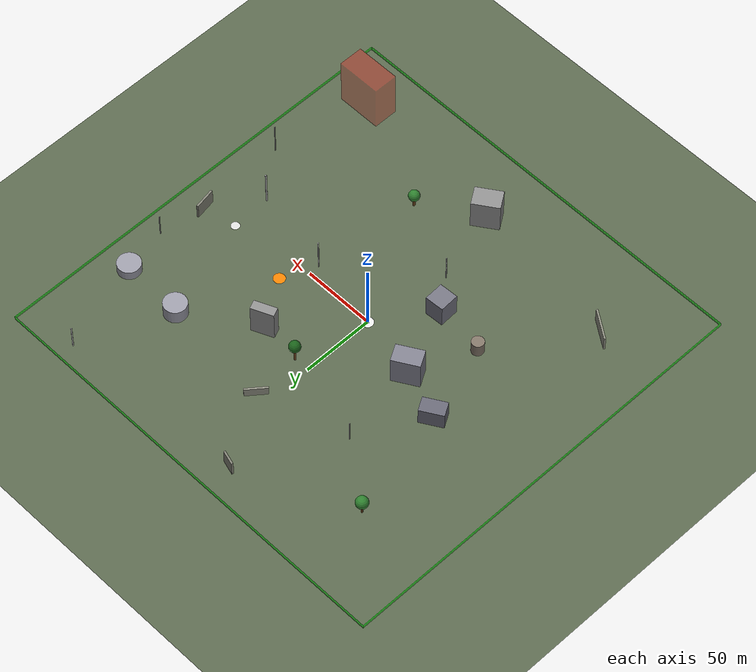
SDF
<?xml version="1.0" ?>
<sdf version="1.9">
  <!--
  Generated World: training_variant_008
  Seed: 50
  Difficulty: medium
  Obstacles: 22
  NFZs: 1
  Generated: 2025-12-27T10:39:35.564228
  Generator: Flyby F-11 World Generator v1.0.0
-->
  <world name="training_variant_008">
    <physics name="training_physics" type="ode">
      <max_step_size>0.001</max_step_size>
      <real_time_factor>1.0</real_time_factor>
      <real_time_update_rate>1000</real_time_update_rate>
      <ode>
        <solver>
          <type>quick</type>
          <iters>50</iters>
          <sor>1.3</sor>
        </solver>
        <constraints>
          <cfm>0.0</cfm>
          <erp>0.2</erp>
        </constraints>
      </ode>
    </physics>
    <plugin filename="gz-sim-physics-system" name="gz::sim::systems::Physics"/>
    <plugin filename="gz-sim-sensors-system" name="gz::sim::systems::Sensors">
      <render_engine>ogre2</render_engine>
    </plugin>
    <plugin filename="gz-sim-scene-broadcaster-system" name="gz::sim::systems::SceneBroadcaster"/>
    <plugin filename="gz-sim-user-commands-system" name="gz::sim::systems::UserCommands"/>
    <plugin filename="gz-sim-imu-system" name="gz::sim::systems::Imu"/>
    <plugin filename="gz-sim-air-pressure-system" name="gz::sim::systems::AirPressure"/>
    <plugin filename="gz-sim-magnetometer-system" name="gz::sim::systems::Magnetometer"/>
    <plugin filename="gz-sim-navsat-system" name="gz::sim::systems::NavSat"/>
    <plugin filename="gz-sim-contact-system" name="gz::sim::systems::Contact"/>
    <plugin filename="gz-sim-wind-effects-system" name="gz::sim::systems::WindEffects">
      <force_approximation_scaling_factor>1.0</force_approximation_scaling_factor>
    </plugin>
    <atmosphere type="adiabatic">
      <temperature>288.15</temperature>
      <pressure>101325</pressure>
      <mass_density>1.225</mass_density>
    </atmosphere>
    <wind>
      <linear_velocity>0.6083935770676241 -1.2316871148886426 0</linear_velocity>
    </wind>
    <spherical_coordinates>
      <surface_model>EARTH_WGS84</surface_model>
      <world_frame_orientation>ENU</world_frame_orientation>
      <latitude_deg>33.3853</latitude_deg>
      <longitude_deg>-117.5653</longitude_deg>
      <elevation>100</elevation>
      <heading_deg>0</heading_deg>
    </spherical_coordinates>
    <scene>
      <ambient>0.5 0.5 0.52 1</ambient>
      <background>0.6 0.6 0.65 1</background>
      <shadows>true</shadows>
      <grid>false</grid>
    </scene>
    <light type="directional" name="sun">
      <cast_shadows>true</cast_shadows>
      <pose>0 0 100 0 0 0</pose>
      <diffuse>0.5 0.5 0.55 1</diffuse>
      <specular>0.05 0.05 0.05 1</specular>
      <attenuation>
        <range>1000</range>
        <constant>0.9</constant>
        <linear>0.01</linear>
        <quadratic>0.001</quadratic>
      </attenuation>
      <direction>-0.3 0.0 -0.95</direction>
    </light>
    <model name="ground_plane">
      <static>true</static>
      <link name="link">
        <collision name="collision">
          <geometry>
            <plane>
              <normal>0 0 1</normal>
              <size>500 500</size>
            </plane>
          </geometry>
          <surface>
            <friction>
              <ode>
                <mu>100</mu>
                <mu2>50</mu2>
              </ode>
            </friction>
          </surface>
        </collision>
        <visual name="visual">
          <geometry>
            <plane>
              <normal>0 0 1</normal>
              <size>500 500</size>
            </plane>
          </geometry>
          <material>
            <ambient>0.35 0.4 0.3 1</ambient>
            <diffuse>0.35 0.4 0.3 1</diffuse>
          </material>
        </visual>
      </link>
    </model>
    <model name="geofence_north">
      <static>true</static>
      <pose>0 150.0 1 0 0 0</pose>
      <link name="link">
        <visual name="visual">
          <geometry>
            <box>
              <size>300.0 0.5 2</size>
            </box>
          </geometry>
          <material>
            <ambient>0 0.8 0 0.6</ambient>
            <diffuse>0 0.8 0 0.6</diffuse>
            <emissive>0 0.2 0 1</emissive>
          </material>
        </visual>
      </link>
    </model>
    <model name="geofence_south">
      <static>true</static>
      <pose>0 -150.0 1 0 0 0</pose>
      <link name="link">
        <visual name="visual">
          <geometry>
            <box>
              <size>300.0 0.5 2</size>
            </box>
          </geometry>
          <material>
            <ambient>0 0.8 0 0.6</ambient>
            <diffuse>0 0.8 0 0.6</diffuse>
            <emissive>0 0.2 0 1</emissive>
          </material>
        </visual>
      </link>
    </model>
    <model name="geofence_east">
      <static>true</static>
      <pose>150.0 0 1 0 0 0</pose>
      <link name="link">
        <visual name="visual">
          <geometry>
            <box>
              <size>0.5 300.0 2</size>
            </box>
          </geometry>
          <material>
            <ambient>0 0.8 0 0.6</ambient>
            <diffuse>0 0.8 0 0.6</diffuse>
            <emissive>0 0.2 0 1</emissive>
          </material>
        </visual>
      </link>
    </model>
    <model name="geofence_west">
      <static>true</static>
      <pose>-150.0 0 1 0 0 0</pose>
      <link name="link">
        <visual name="visual">
          <geometry>
            <box>
              <size>0.5 300.0 2</size>
            </box>
          </geometry>
          <material>
            <ambient>0 0.8 0 0.6</ambient>
            <diffuse>0 0.8 0 0.6</diffuse>
            <emissive>0 0.2 0 1</emissive>
          </material>
        </visual>
      </link>
    </model>
    <model name="nfz_0_volume">
      <static>true</static>
      <pose>119.09356333825525 -116.7911014815621 17.359309904262368 0 0 0</pose>
      <link name="link">
        <visual name="visual">
          <geometry>
            <box>
              <size>31.21347679546374 17.007542670311764 34.718619808524736</size>
            </box>
          </geometry>
          <material>
            <ambient>1 0 0 0.30000000000000004</ambient>
            <diffuse>1 0 0 0.30000000000000004</diffuse>
          </material>
        </visual>
      </link>
    </model>
    <model name="obstacle_building_0">
      <static>true</static>
      <pose>-44.4099984255694 10.05842874548523 10.518671428768762 0 0 0.5312778387119492</pose>
      <link name="link">
        <visual name="visual">
          <geometry>
            <box>
              <size>18.689760766251062 12.232888171512762 21.037342857537524</size>
            </box>
          </geometry>
          <material>
            <ambient>0.5 0.5 0.55 1.0</ambient>
            <diffuse>0.5 0.5 0.55 1.0</diffuse>
          </material>
        </visual>
        <collision name="collision">
          <geometry>
            <box>
              <size>18.689760766251062 12.232888171512762 21.037342857537524</size>
            </box>
          </geometry>
        </collision>
      </link>
    </model>
    <model name="obstacle_pole_1">
      <static>true</static>
      <pose>133.658471402165 -50.335147868335795 11.626369249020158 0 0 0.0</pose>
      <link name="link">
        <visual name="visual">
          <geometry>
            <cylinder>
              <radius>0.34599525857086133</radius>
              <length>23.252738498040316</length>
            </cylinder>
          </geometry>
          <material>
            <ambient>0.65 0.65 0.65 1.0</ambient>
            <diffuse>0.65 0.65 0.65 1.0</diffuse>
          </material>
        </visual>
        <collision name="collision">
          <geometry>
            <cylinder>
              <radius>0.34599525857086133</radius>
              <length>23.252738498040316</length>
            </cylinder>
          </geometry>
        </collision>
      </link>
    </model>
    <model name="obstacle_pole_2">
      <static>true</static>
      <pose>109.21126070651314 -19.758061162488076 12.440638862691243 0 0 0.0</pose>
      <link name="link">
        <visual name="visual">
          <geometry>
            <cylinder>
              <radius>0.5592788420518917</radius>
              <length>24.881277725382485</length>
            </cylinder>
          </geometry>
          <material>
            <ambient>0.65 0.65 0.65 1.0</ambient>
            <diffuse>0.65 0.65 0.65 1.0</diffuse>
          </material>
        </visual>
        <collision name="collision">
          <geometry>
            <cylinder>
              <radius>0.5592788420518917</radius>
              <length>24.881277725382485</length>
            </cylinder>
          </geometry>
        </collision>
      </link>
    </model>
    <model name="obstacle_tank_3">
      <static>true</static>
      <pose>85.87217325465019 77.6590022097285 5.079443281976555 0 0 0.0</pose>
      <link name="link">
        <visual name="visual">
          <geometry>
            <cylinder>
              <radius>7.849812867164761</radius>
              <length>10.15888656395311</length>
            </cylinder>
          </geometry>
          <material>
            <ambient>0.6 0.6 0.65 1.0</ambient>
            <diffuse>0.6 0.6 0.65 1.0</diffuse>
          </material>
        </visual>
        <collision name="collision">
          <geometry>
            <cylinder>
              <radius>7.849812867164761</radius>
              <length>10.15888656395311</length>
            </cylinder>
          </geometry>
        </collision>
      </link>
    </model>
    <model name="obstacle_wall_4">
      <static>true</static>
      <pose>-17.70229816913597 130.68828296050324 5.396293198988226 0 0 2.8614011813780005</pose>
      <link name="link">
        <visual name="visual">
          <geometry>
            <box>
              <size>10.085887710812067 1.3374492247863126 10.792586397976452</size>
            </box>
          </geometry>
          <material>
            <ambient>0.5 0.5 0.45 1.0</ambient>
            <diffuse>0.5 0.5 0.45 1.0</diffuse>
          </material>
        </visual>
        <collision name="collision">
          <geometry>
            <box>
              <size>10.085887710812067 1.3374492247863126 10.792586397976452</size>
            </box>
          </geometry>
        </collision>
      </link>
    </model>
    <model name="obstacle_building_5">
      <static>true</static>
      <pose>-76.66694979013859 20.851457146065627 6.2921408474158795 0 0 0.5359110294022053</pose>
      <link name="link">
        <visual name="visual">
          <geometry>
            <box>
              <size>16.30954160522076 10.139929943826704 12.584281694831759</size>
            </box>
          </geometry>
          <material>
            <ambient>0.4 0.4 0.45 1.0</ambient>
            <diffuse>0.4 0.4 0.45 1.0</diffuse>
          </material>
        </visual>
        <collision name="collision">
          <geometry>
            <box>
              <size>16.30954160522076 10.139929943826704 12.584281694831759</size>
            </box>
          </geometry>
        </collision>
      </link>
    </model>
    <model name="obstacle_tank_6">
      <static>true</static>
      <pose>129.24168523445456 75.98797479920302 3.352610368725322 0 0 0.0</pose>
      <link name="link">
        <visual name="visual">
          <geometry>
            <cylinder>
              <radius>7.858339304311288</radius>
              <length>6.705220737450644</length>
            </cylinder>
          </geometry>
          <material>
            <ambient>0.6 0.6 0.65 1.0</ambient>
            <diffuse>0.6 0.6 0.65 1.0</diffuse>
          </material>
        </visual>
        <collision name="collision">
          <geometry>
            <cylinder>
              <radius>7.858339304311288</radius>
              <length>6.705220737450644</length>
            </cylinder>
          </geometry>
        </collision>
      </link>
    </model>
    <model name="obstacle_building_7">
      <static>true</static>
      <pose>4.336106221792448 -106.32615762566115 10.949226306596618 0 0 0.5954691623615246</pose>
      <link name="link">
        <visual name="visual">
          <geometry>
            <box>
              <size>18.65060250617782 13.334786443310978 21.898452613193236</size>
            </box>
          </geometry>
          <material>
            <ambient>0.55 0.55 0.55 1.0</ambient>
            <diffuse>0.55 0.55 0.55 1.0</diffuse>
          </material>
        </visual>
        <collision name="collision">
          <geometry>
            <box>
              <size>18.65060250617782 13.334786443310978 21.898452613193236</size>
            </box>
          </geometry>
        </collision>
      </link>
    </model>
    <model name="obstacle_pole_8">
      <static>true</static>
      <pose>50.36478144625775 -7.593882570326372 12.02346081238282 0 0 0.0</pose>
      <link name="link">
        <visual name="visual">
          <geometry>
            <cylinder>
              <radius>0.40751912223328135</radius>
              <length>24.04692162476564</length>
            </cylinder>
          </geometry>
          <material>
            <ambient>0.75 0.75 0.75 1.0</ambient>
            <diffuse>0.75 0.75 0.75 1.0</diffuse>
          </material>
        </visual>
        <collision name="collision">
          <geometry>
            <cylinder>
              <radius>0.40751912223328135</radius>
              <length>24.04692162476564</length>
            </cylinder>
          </geometry>
        </collision>
      </link>
    </model>
    <model name="obstacle_wall_9">
      <static>true</static>
      <pose>-103.71971862381703 -93.67557198420167 5.177476098528496 0 0 2.5453522612961614</pose>
      <link name="link">
        <visual name="visual">
          <geometry>
            <box>
              <size>22.042247538146363 1.2241841268708802 10.354952197056992</size>
            </box>
          </geometry>
          <material>
            <ambient>0.55 0.55 0.5 1.0</ambient>
            <diffuse>0.55 0.55 0.5 1.0</diffuse>
          </material>
        </visual>
        <collision name="collision">
          <geometry>
            <box>
              <size>22.042247538146363 1.2241841268708802 10.354952197056992</size>
            </box>
          </geometry>
        </collision>
      </link>
    </model>
    <model name="obstacle_building_10">
      <static>true</static>
      <pose>39.12903332216189 48.196306159429156 11.261212644497324 0 0 0.4149528125833552</pose>
      <link name="link">
        <visual name="visual">
          <geometry>
            <box>
              <size>15.593495594072788 6.424361271352709 22.522425288994647</size>
            </box>
          </geometry>
          <material>
            <ambient>0.55 0.55 0.55 1.0</ambient>
            <diffuse>0.55 0.55 0.55 1.0</diffuse>
          </material>
        </visual>
        <collision name="collision">
          <geometry>
            <box>
              <size>15.593495594072788 6.424361271352709 22.522425288994647</size>
            </box>
          </geometry>
        </collision>
      </link>
    </model>
    <model name="obstacle_building_11">
      <static>true</static>
      <pose>-25.836299771420855 -36.65255457356521 7.996555125391973 0 0 0.053043036370772276</pose>
      <link name="link">
        <visual name="visual">
          <geometry>
            <box>
              <size>13.019192853701608 13.388760257638978 15.993110250783946</size>
            </box>
          </geometry>
          <material>
            <ambient>0.45 0.45 0.5 1.0</ambient>
            <diffuse>0.45 0.45 0.5 1.0</diffuse>
          </material>
        </visual>
        <collision name="collision">
          <geometry>
            <box>
              <size>13.019192853701608 13.388760257638978 15.993110250783946</size>
            </box>
          </geometry>
        </collision>
      </link>
    </model>
    <model name="obstacle_tree_12">
      <static>true</static>
      <pose>10.753047905585078 50.04599480371982 0 0 0 0.0</pose>
      <link name="link">
        <visual name="trunk">
          <pose>0 0 5.565919168594315 0 0 0</pose>
          <geometry>
            <cylinder>
              <radius>0.6699904568690859</radius>
              <length>11.13183833718863</length>
            </cylinder>
          </geometry>
          <material>
            <ambient>0.42 0.27 0.12 1.0</ambient>
            <diffuse>0.42 0.27 0.12 1.0</diffuse>
          </material>
        </visual>
        <visual name="canopy">
          <pose>0 0 13.485240985833368 0 0 0</pose>
          <geometry>
            <sphere>
              <radius>3.92233774774123</radius>
            </sphere>
          </geometry>
          <material>
            <ambient>0.1 0.38 0.1 1.0</ambient>
            <diffuse>0.1 0.38 0.1 1.0</diffuse>
          </material>
        </visual>
        <collision name="collision">
          <pose>0 0 9.488256916335544 0 0 0</pose>
          <geometry>
            <cylinder>
              <radius>3.92233774774123</radius>
              <length>18.97651383267109</length>
            </cylinder>
          </geometry>
        </collision>
      </link>
    </model>
    <model name="obstacle_pole_13">
      <static>true</static>
      <pose>136.05828232292455 44.33169902104544 8.481618014219652 0 0 0.0</pose>
      <link name="link">
        <visual name="visual">
          <geometry>
            <cylinder>
              <radius>0.3479894565710798</radius>
              <length>16.963236028439304</length>
            </cylinder>
          </geometry>
          <material>
            <ambient>0.65 0.65 0.65 1.0</ambient>
            <diffuse>0.65 0.65 0.65 1.0</diffuse>
          </material>
        </visual>
        <collision name="collision">
          <geometry>
            <cylinder>
              <radius>0.3479894565710798</radius>
              <length>16.963236028439304</length>
            </cylinder>
          </geometry>
        </collision>
      </link>
    </model>
    <model name="obstacle_pole_14">
      <static>true</static>
      <pose>-52.68711412814544 66.26236601644715 8.215224334202034 0 0 0.0</pose>
      <link name="link">
        <visual name="visual">
          <geometry>
            <cylinder>
              <radius>0.315048826445939</radius>
              <length>16.43044866840407</length>
            </cylinder>
          </geometry>
          <material>
            <ambient>0.7 0.7 0.7 1.0</ambient>
            <diffuse>0.7 0.7 0.7 1.0</diffuse>
          </material>
        </visual>
        <collision name="collision">
          <geometry>
            <cylinder>
              <radius>0.315048826445939</radius>
              <length>16.43044866840407</length>
            </cylinder>
          </geometry>
        </collision>
      </link>
    </model>
    <model name="obstacle_pole_15">
      <static>true</static>
      <pose>111.0832392864641 137.93838568424334 8.704972624000671 0 0 0.0</pose>
      <link name="link">
        <visual name="visual">
          <geometry>
            <cylinder>
              <radius>0.45004777249578004</radius>
              <length>17.409945248001343</length>
            </cylinder>
          </geometry>
          <material>
            <ambient>0.75 0.75 0.75 1.0</ambient>
            <diffuse>0.75 0.75 0.75 1.0</diffuse>
          </material>
        </visual>
        <collision name="collision">
          <geometry>
            <cylinder>
              <radius>0.45004777249578004</radius>
              <length>17.409945248001343</length>
            </cylinder>
          </geometry>
        </collision>
      </link>
    </model>
    <model name="obstacle_tree_16">
      <static>true</static>
      <pose>-94.19255758384813 96.44904687518985 0 0 0 0.0</pose>
      <link name="link">
        <visual name="trunk">
          <pose>0 0 4.043687079991956 0 0 0</pose>
          <geometry>
            <cylinder>
              <radius>0.544623619677259</radius>
              <length>8.087374159983913</length>
            </cylinder>
          </geometry>
          <material>
            <ambient>0.4 0.25 0.1 1.0</ambient>
            <diffuse>0.4 0.25 0.1 1.0</diffuse>
          </material>
        </visual>
        <visual name="canopy">
          <pose>0 0 10.614850928014079 0 0 0</pose>
          <geometry>
            <sphere>
              <radius>4.212461280050277</radius>
            </sphere>
          </geometry>
          <material>
            <ambient>0.18 0.5 0.18 1.0</ambient>
            <diffuse>0.18 0.5 0.18 1.0</diffuse>
          </material>
        </visual>
        <collision name="collision">
          <pose>0 0 8.256148360042234 0 0 0</pose>
          <geometry>
            <cylinder>
              <radius>4.212461280050277</radius>
              <length>16.512296720084468</length>
            </cylinder>
          </geometry>
        </collision>
      </link>
    </model>
    <model name="obstacle_wall_17">
      <static>true</static>
      <pose>8.795935762431554 83.71909090865725 3.133345778555364 0 0 0.8939979952917014</pose>
      <link name="link">
        <visual name="visual">
          <geometry>
            <box>
              <size>15.030676115961676 1.3780482882711267 6.266691557110728</size>
            </box>
          </geometry>
          <material>
            <ambient>0.55 0.55 0.5 1.0</ambient>
            <diffuse>0.55 0.55 0.5 1.0</diffuse>
          </material>
        </visual>
        <collision name="collision">
          <geometry>
            <box>
              <size>15.030676115961676 1.3780482882711267 6.266691557110728</size>
            </box>
          </geometry>
        </collision>
      </link>
    </model>
    <model name="obstacle_wall_18">
      <static>true</static>
      <pose>130.75391802190194 12.086038763450318 5.431805050121482 0 0 1.7582991003733865</pose>
      <link name="link">
        <visual name="visual">
          <geometry>
            <box>
              <size>14.723086861900239 1.3794077911343123 10.863610100242964</size>
            </box>
          </geometry>
          <material>
            <ambient>0.5 0.5 0.45 1.0</ambient>
            <diffuse>0.5 0.5 0.45 1.0</diffuse>
          </material>
        </visual>
        <collision name="collision">
          <geometry>
            <box>
              <size>14.723086861900239 1.3794077911343123 10.863610100242964</size>
            </box>
          </geometry>
        </collision>
      </link>
    </model>
    <model name="obstacle_pole_19">
      <static>true</static>
      <pose>-9.579740535256207 -57.17283849124041 9.923658068070838 0 0 0.0</pose>
      <link name="link">
        <visual name="visual">
          <geometry>
            <cylinder>
              <radius>0.3901035896541852</radius>
              <length>19.847316136141675</length>
            </cylinder>
          </geometry>
          <material>
            <ambient>0.75 0.75 0.75 1.0</ambient>
            <diffuse>0.75 0.75 0.75 1.0</diffuse>
          </material>
        </visual>
        <collision name="collision">
          <geometry>
            <cylinder>
              <radius>0.3901035896541852</radius>
              <length>19.847316136141675</length>
            </cylinder>
          </geometry>
        </collision>
      </link>
    </model>
    <model name="obstacle_tree_20">
      <static>true</static>
      <pose>43.10909668866816 -82.01283234105972 0 0 0 0.0</pose>
      <link name="link">
        <visual name="trunk">
          <pose>0 0 3.6738088259135986 0 0 0</pose>
          <geometry>
            <cylinder>
              <radius>0.7962770062290829</radius>
              <length>7.347617651827197</length>
            </cylinder>
          </geometry>
          <material>
            <ambient>0.4 0.25 0.1 1.0</ambient>
            <diffuse>0.4 0.25 0.1 1.0</diffuse>
          </material>
        </visual>
        <visual name="canopy">
          <pose>0 0 9.622739876336759 0 0 0</pose>
          <geometry>
            <sphere>
              <radius>3.791870374182603</radius>
            </sphere>
          </geometry>
          <material>
            <ambient>0.18 0.5 0.18 1.0</ambient>
            <diffuse>0.18 0.5 0.18 1.0</diffuse>
          </material>
        </visual>
        <collision name="collision">
          <pose>0 0 7.465679200096202 0 0 0</pose>
          <geometry>
            <cylinder>
              <radius>3.791870374182603</radius>
              <length>14.931358400192403</length>
            </cylinder>
          </geometry>
        </collision>
      </link>
    </model>
    <model name="obstacle_tank_21">
      <static>true</static>
      <pose>-60.706650609527586 -32.617262668993845 4.68493747334518 0 0 0.0</pose>
      <link name="link">
        <visual name="visual">
          <geometry>
            <cylinder>
              <radius>4.197090891738123</radius>
              <length>9.36987494669036</length>
            </cylinder>
          </geometry>
          <material>
            <ambient>0.5 0.45 0.4 1.0</ambient>
            <diffuse>0.5 0.45 0.4 1.0</diffuse>
          </material>
        </visual>
        <collision name="collision">
          <geometry>
            <cylinder>
              <radius>4.197090891738123</radius>
              <length>9.36987494669036</length>
            </cylinder>
          </geometry>
        </collision>
      </link>
    </model>
    <model name="lz_primary">
      <static>true</static>
      <pose>0 0 0.02 0 0 0</pose>
      <link name="link">
        <visual name="pad">
          <geometry>
            <cylinder>
              <radius>4.0</radius>
              <length>0.04</length>
            </cylinder>
          </geometry>
          <material>
            <ambient>0.9 0.9 0.9 1</ambient>
            <diffuse>0.9 0.9 0.9 1</diffuse>
          </material>
        </visual>
        <visual name="H_v">
          <pose>0 0 0.02 0 0 0</pose>
          <geometry>
            <box>
              <size>0.6 2.5 0.01</size>
            </box>
          </geometry>
          <material>
            <ambient>0 0 0.8 1</ambient>
            <diffuse>0 0 0.8 1</diffuse>
          </material>
        </visual>
        <visual name="H_h">
          <pose>0 0 0.02 0 0 0</pose>
          <geometry>
            <box>
              <size>2.5 0.6 0.01</size>
            </box>
          </geometry>
          <material>
            <ambient>0 0 0.8 1</ambient>
            <diffuse>0 0 0.8 1</diffuse>
          </material>
        </visual>
      </link>
    </model>
    <model name="lz_secondary">
      <static>true</static>
      <pose>108.35973171990744 7.474592014673959 0.02 0 0 0</pose>
      <link name="link">
        <visual name="pad">
          <geometry>
            <cylinder>
              <radius>3.0</radius>
              <length>0.04</length>
            </cylinder>
          </geometry>
          <material>
            <ambient>0.85 0.85 0.85 1</ambient>
            <diffuse>0.85 0.85 0.85 1</diffuse>
          </material>
        </visual>
      </link>
    </model>
    <model name="lz_emergency">
      <static>true</static>
      <pose>60.61398528662181 15.680809918835223 0.02 0 0 0</pose>
      <link name="link">
        <visual name="pad">
          <geometry>
            <cylinder>
              <radius>4.0</radius>
              <length>0.04</length>
            </cylinder>
          </geometry>
          <material>
            <ambient>1 0.5 0 1</ambient>
            <diffuse>1 0.5 0 1</diffuse>
          </material>
        </visual>
      </link>
    </model>
    <include>
      <uri>model://iris_with_ardupilot</uri>
      <name>iris</name>
      <pose>0 0 0.5 0 0 0</pose>
    </include>
  </world>
</sdf>

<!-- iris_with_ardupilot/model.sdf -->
<sdf version="1.9">
  <model name="iris_with_ardupilot">
    <pose>0 0 0.2 0 0 0</pose>

    <link name="base_link">
      <inertial>
        <mass>1.5</mass>
        <inertia>
          <ixx>0.029125</ixx>
          <ixy>0</ixy>
          <ixz>0</ixz>
          <iyy>0.029125</iyy>
          <iyz>0</iyz>
          <izz>0.055225</izz>
        </inertia>
      </inertial>

      <visual name="body_visual">
        <geometry>
          <box>
            <size>0.47 0.47 0.11</size>
          </box>
        </geometry>
        <material>
          <ambient>0.2 0.2 0.2 1</ambient>
          <diffuse>0.2 0.2 0.2 1</diffuse>
        </material>
      </visual>

      <!-- Center marker for orientation (green = forward) -->
      <visual name="center_marker">
        <pose>0.15 0 0 0 0 0</pose>
        <geometry>
          <sphere>
            <radius>0.05</radius>
          </sphere>
        </geometry>
        <material>
          <ambient>0 1 0 1</ambient>
          <diffuse>0 1 0 1</diffuse>
        </material>
      </visual>

      <collision name="collision">
        <geometry>
          <box>
            <size>0.47 0.47 0.11</size>
          </box>
        </geometry>
      </collision>

      <!-- GPS/NavSat Sensor                -->
      <!-- Consumer-grade GPS accuracy      -->
      <sensor name="navsat_sensor" type="navsat">
        <always_on>1</always_on>
        <update_rate>10</update_rate>
        <topic>gps</topic>
        <navsat>
          <position_sensing>
            <horizontal>
              <noise type="gaussian">
                <mean>0.0</mean>
                <stddev>0.5</stddev>
              </noise>
            </horizontal>
            <vertical>
              <noise type="gaussian">
                <mean>0.0</mean>
                <stddev>1.0</stddev>
              </noise>
            </vertical>
          </position_sensing>
          <velocity_sensing>
            <horizontal>
              <noise type="gaussian">
                <mean>0.0</mean>
                <stddev>0.05</stddev>
              </noise>
            </horizontal>
            <vertical>
              <noise type="gaussian">
                <mean>0.0</mean>
                <stddev>0.1</stddev>
              </noise>
            </vertical>
          </velocity_sensing>
        </navsat>
      </sensor>

      <!-- Magnetometer Sensor              -->
      <!-- Earth magnetic field sensing     -->
      <!-- Declination: ~11.5 deg E (San Diego) -->
      <sensor name="magnetometer_sensor" type="magnetometer">
        <always_on>1</always_on>
        <update_rate>50</update_rate>
        <topic>magnetometer</topic>
        <magnetometer>
          <x>
            <noise type="gaussian">
              <mean>0</mean>
              <stddev>0.001</stddev>
              <bias_mean>0.00001</bias_mean>
              <bias_stddev>0.000002</bias_stddev>
            </noise>
          </x>
          <y>
            <noise type="gaussian">
              <mean>0</mean>
              <stddev>0.001</stddev>
              <bias_mean>0.00001</bias_mean>
              <bias_stddev>0.000002</bias_stddev>
            </noise>
          </y>
          <z>
            <noise type="gaussian">
              <mean>0</mean>
              <stddev>0.001</stddev>
              <bias_mean>0.00001</bias_mean>
              <bias_stddev>0.000002</bias_stddev>
            </noise>
          </z>
        </magnetometer>
      </sensor>

      <!-- Barometer Sensor                 -->
      <!-- Atmospheric pressure sensing     -->
      <!-- ~8.3 Pa per meter at sea level   -->
      <sensor name="air_pressure_sensor" type="air_pressure">
        <always_on>1</always_on>
        <update_rate>20</update_rate>
        <topic>air_pressure</topic>
        <air_pressure>
          <reference_altitude>0</reference_altitude>
          <pressure>
            <noise type="gaussian">
              <mean>0</mean>
              <stddev>10</stddev>
            </noise>
          </pressure>
        </air_pressure>
      </sensor>

    </link>

    <!-- Rotor 0 (Front Right, CW)        -->
    <link name="rotor_0">
      <pose>0.13 -0.22 0.023 0 0 0</pose>
      <inertial>
        <mass>0.005</mass>
        <inertia>
          <ixx>9.75e-07</ixx>
          <ixy>0</ixy>
          <ixz>0</ixz>
          <iyy>0.000166704</iyy>
          <iyz>0</iyz>
          <izz>0.000167604</izz>
        </inertia>
      </inertial>
      <visual name="visual">
        <geometry>
          <cylinder>
            <radius>0.128</radius>
            <length>0.005</length>
          </cylinder>
        </geometry>
        <material>
          <ambient>1 0 0 1</ambient>
          <diffuse>1 0 0 1</diffuse>
        </material>
      </visual>
    </link>

    <!-- Rotor 1 (Back Left, CW)          -->
    <link name="rotor_1">
      <pose>-0.13 0.2 0.023 0 0 0</pose>
      <inertial>
        <mass>0.005</mass>
        <inertia>
          <ixx>9.75e-07</ixx>
          <ixy>0</ixy>
          <ixz>0</ixz>
          <iyy>0.000166704</iyy>
          <iyz>0</iyz>
          <izz>0.000167604</izz>
        </inertia>
      </inertial>
      <visual name="visual">
        <geometry>
          <cylinder>
            <radius>0.128</radius>
            <length>0.005</length>
          </cylinder>
        </geometry>
        <material>
          <ambient>1 0 0 1</ambient>
          <diffuse>1 0 0 1</diffuse>
        </material>
      </visual>
    </link>

    <!-- Rotor 2 (Front Left, CCW)        -->
    <link name="rotor_2">
      <pose>0.13 0.22 0.023 0 0 0</pose>
      <inertial>
        <mass>0.005</mass>
        <inertia>
          <ixx>9.75e-07</ixx>
          <ixy>0</ixy>
          <ixz>0</ixz>
          <iyy>0.000166704</iyy>
          <iyz>0</iyz>
          <izz>0.000167604</izz>
        </inertia>
      </inertial>
      <visual name="visual">
        <geometry>
          <cylinder>
            <radius>0.128</radius>
            <length>0.005</length>
          </cylinder>
        </geometry>
        <material>
          <ambient>0 0 1 1</ambient>
          <diffuse>0 0 1 1</diffuse>
        </material>
      </visual>
    </link>

    <!-- Rotor 3 (Back Right, CCW)        -->
    <link name="rotor_3">
      <pose>-0.13 -0.2 0.023 0 0 0</pose>
      <inertial>
        <mass>0.005</mass>
        <inertia>
          <ixx>9.75e-07</ixx>
          <ixy>0</ixy>
          <ixz>0</ixz>
          <iyy>0.000166704</iyy>
          <iyz>0</iyz>
          <izz>0.000167604</izz>
        </inertia>
      </inertial>
      <visual name="visual">
        <geometry>
          <cylinder>
            <radius>0.128</radius>
            <length>0.005</length>
          </cylinder>
        </geometry>
        <material>
          <ambient>0 0 1 1</ambient>
          <diffuse>0 0 1 1</diffuse>
        </material>
      </visual>
    </link>

    <!-- Rotor joints -->
    <joint name="rotor_0_joint" type="revolute">
      <parent>base_link</parent>
      <child>rotor_0</child>
      <axis>
        <xyz>0 0 1</xyz>
        <limit>
          <lower>-1e16</lower>
          <upper>1e16</upper>
        </limit>
      </axis>
    </joint>

    <joint name="rotor_1_joint" type="revolute">
      <parent>base_link</parent>
      <child>rotor_1</child>
      <axis>
        <xyz>0 0 1</xyz>
        <limit>
          <lower>-1e16</lower>
          <upper>1e16</upper>
        </limit>
      </axis>
    </joint>

    <joint name="rotor_2_joint" type="revolute">
      <parent>base_link</parent>
      <child>rotor_2</child>
      <axis>
        <xyz>0 0 1</xyz>
        <limit>
          <lower>-1e16</lower>
          <upper>1e16</upper>
        </limit>
      </axis>
    </joint>

    <joint name="rotor_3_joint" type="revolute">
      <parent>base_link</parent>
      <child>rotor_3</child>
      <axis>
        <xyz>0 0 1</xyz>
        <limit>
          <lower>-1e16</lower>
          <upper>1e16</upper>
        </limit>
      </axis>
    </joint>

    <!-- IMU Sensor Link                  -->
    <!-- 250Hz MEMS IMU with noise        -->
    <link name="imu_link">
      <pose>0 0 0 0 0 0</pose>
      <inertial>
        <mass>0.001</mass>
        <inertia>
          <ixx>1e-05</ixx>
          <ixy>0</ixy>
          <ixz>0</ixz>
          <iyy>1e-05</iyy>
          <iyz>0</iyz>
          <izz>1e-05</izz>
        </inertia>
      </inertial>
      <sensor name="imu_sensor" type="imu">
        <always_on>1</always_on>
        <update_rate>250</update_rate>
        <topic>imu</topic>
        <imu>
          <angular_velocity>
            <x>
              <noise type="gaussian">
                <mean>0</mean>
                <stddev>0.009</stddev>
                <bias_mean>0.0001</bias_mean>
                <bias_stddev>0.00002</bias_stddev>
              </noise>
            </x>
            <y>
              <noise type="gaussian">
                <mean>0</mean>
                <stddev>0.009</stddev>
                <bias_mean>0.0001</bias_mean>
                <bias_stddev>0.00002</bias_stddev>
              </noise>
            </y>
            <z>
              <noise type="gaussian">
                <mean>0</mean>
                <stddev>0.009</stddev>
                <bias_mean>0.0001</bias_mean>
                <bias_stddev>0.00002</bias_stddev>
              </noise>
            </z>
          </angular_velocity>
          <linear_acceleration>
            <x>
              <noise type="gaussian">
                <mean>0</mean>
                <stddev>0.017</stddev>
                <bias_mean>0.001</bias_mean>
                <bias_stddev>0.0002</bias_stddev>
              </noise>
            </x>
            <y>
              <noise type="gaussian">
                <mean>0</mean>
                <stddev>0.017</stddev>
                <bias_mean>0.001</bias_mean>
                <bias_stddev>0.0002</bias_stddev>
              </noise>
            </y>
            <z>
              <noise type="gaussian">
                <mean>0</mean>
                <stddev>0.017</stddev>
                <bias_mean>0.001</bias_mean>
                <bias_stddev>0.0002</bias_stddev>
              </noise>
            </z>
          </linear_acceleration>
        </imu>
      </sensor>
    </link>

    <joint name="imu_joint" type="fixed">
      <parent>base_link</parent>
      <child>imu_link</child>
    </joint>

    <!-- Rangefinder Link                 -->
    <!-- Downward-facing lidar for AGL    -->
    <link name="rangefinder_link">
      <pose>0 0 -0.05 0 0 0</pose>
      <inertial>
        <mass>0.01</mass>
        <inertia>
          <ixx>1e-05</ixx>
          <ixy>0</ixy>
          <ixz>0</ixz>
          <iyy>1e-05</iyy>
          <iyz>0</iyz>
          <izz>1e-05</izz>
        </inertia>
      </inertial>
      <visual name="visual">
        <geometry>
          <cylinder>
            <radius>0.01</radius>
            <length>0.02</length>
          </cylinder>
        </geometry>
        <material>
          <ambient>0.5 0.5 0.5 1</ambient>
          <diffuse>0.5 0.5 0.5 1</diffuse>
        </material>
      </visual>
      <sensor name="rangefinder" type="gpu_lidar">
        <!-- Pointing straight down (pitch = -90 deg = -1.5708 rad) -->
        <pose>0 0 0 0 1.5708 0</pose>
        <always_on>1</always_on>
        <update_rate>20</update_rate>
        <topic>rangefinder</topic>
        <ray>
          <scan>
            <horizontal>
              <samples>1</samples>
              <resolution>1</resolution>
              <min_angle>0</min_angle>
              <max_angle>0</max_angle>
            </horizontal>
            <vertical>
              <samples>1</samples>
              <resolution>1</resolution>
              <min_angle>0</min_angle>
              <max_angle>0</max_angle>
            </vertical>
          </scan>
          <range>
            <min>0.1</min>
            <max>40.0</max>
            <resolution>0.01</resolution>
          </range>
          <noise>
            <type>gaussian</type>
            <mean>0</mean>
            <stddev>0.02</stddev>
          </noise>
        </ray>
        <visualize>false</visualize>
      </sensor>
    </link>

    <joint name="rangefinder_joint" type="fixed">
      <parent>base_link</parent>
      <child>rangefinder_link</child>
    </joint>

    <!-- ArduPilot Plugin                 -->
    <plugin filename="ArduPilotPlugin" name="ArduPilotPlugin">
      <!-- Network Configuration -->
      <fdm_addr>127.0.0.1</fdm_addr>
      <fdm_port_in>9002</fdm_port_in>
      <fdm_port_out>9003</fdm_port_out>
      <connectionTimeoutMaxCount>5</connectionTimeoutMaxCount>

      <!-- Simulation Settings -->
      <lock_step>1</lock_step>
      <have_32_channels>0</have_32_channels>

      <!-- Coordinate Transforms -->
      <modelXYZToAirplaneXForwardZDown>0 0 0 3.141593 0 0</modelXYZToAirplaneXForwardZDown>
      <gazeboXYZToNED>0 0 0 3.141593 0 0</gazeboXYZToNED>

      <!-- Sensor Reference -->
      <imuName>imu_link::imu_sensor</imuName>

      <!-- Control Channel 0: Front Right (CW) -->
      <control channel="0">
        <jointName>rotor_0_joint</jointName>
        <useForce>1</useForce>
        <multiplier>838</multiplier>
        <offset>-0.5</offset>
        <servo_min>1000</servo_min>
        <servo_max>2000</servo_max>
        <type>VELOCITY</type>
        <p_gain>0.20</p_gain>
        <i_gain>0</i_gain>
        <d_gain>0</d_gain>
        <i_max>0</i_max>
        <i_min>0</i_min>
        <cmd_max>2.5</cmd_max>
        <cmd_min>-2.5</cmd_min>
      </control>

      <!-- Control Channel 1: Back Left (CW) -->
      <control channel="1">
        <jointName>rotor_1_joint</jointName>
        <useForce>1</useForce>
        <multiplier>838</multiplier>
        <offset>-0.5</offset>
        <servo_min>1000</servo_min>
        <servo_max>2000</servo_max>
        <type>VELOCITY</type>
        <p_gain>0.20</p_gain>
        <i_gain>0</i_gain>
        <d_gain>0</d_gain>
        <i_max>0</i_max>
        <i_min>0</i_min>
        <cmd_max>2.5</cmd_max>
        <cmd_min>-2.5</cmd_min>
      </control>

      <!-- Control Channel 2: Front Left (CCW) -->
      <control channel="2">
        <jointName>rotor_2_joint</jointName>
        <useForce>1</useForce>
        <multiplier>838</multiplier>
        <offset>-0.5</offset>
        <servo_min>1000</servo_min>
        <servo_max>2000</servo_max>
        <type>VELOCITY</type>
        <p_gain>0.20</p_gain>
        <i_gain>0</i_gain>
        <d_gain>0</d_gain>
        <i_max>0</i_max>
        <i_min>0</i_min>
        <cmd_max>2.5</cmd_max>
        <cmd_min>-2.5</cmd_min>
      </control>

      <!-- Control Channel 3: Back Right (CCW) -->
      <control channel="3">
        <jointName>rotor_3_joint</jointName>
        <useForce>1</useForce>
        <multiplier>838</multiplier>
        <offset>-0.5</offset>
        <servo_min>1000</servo_min>
        <servo_max>2000</servo_max>
        <type>VELOCITY</type>
        <p_gain>0.20</p_gain>
        <i_gain>0</i_gain>
        <d_gain>0</d_gain>
        <i_max>0</i_max>
        <i_min>0</i_min>
        <cmd_max>2.5</cmd_max>
        <cmd_min>-2.5</cmd_min>
      </control>
    </plugin>

  </model>
</sdf>
